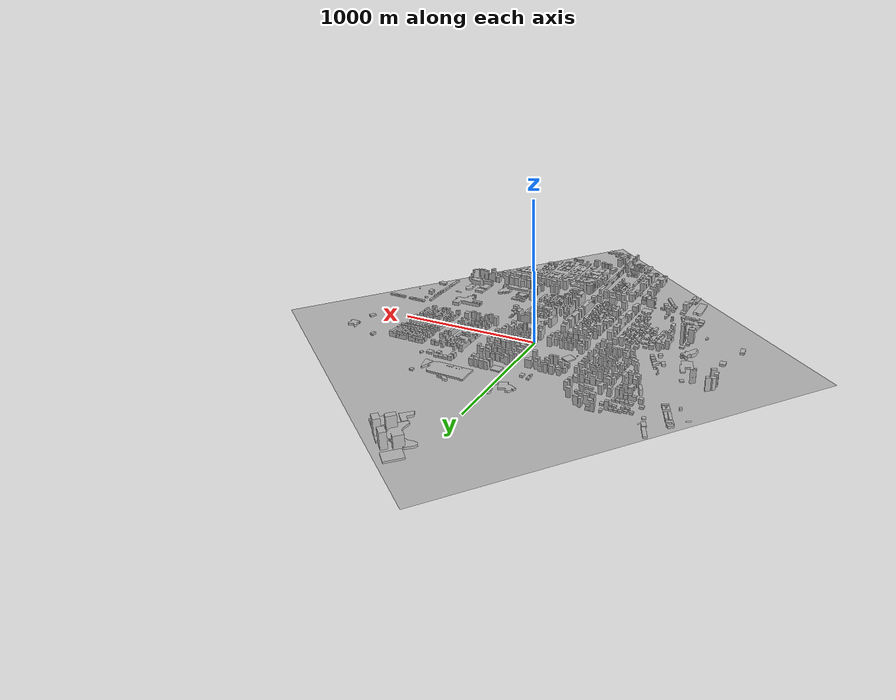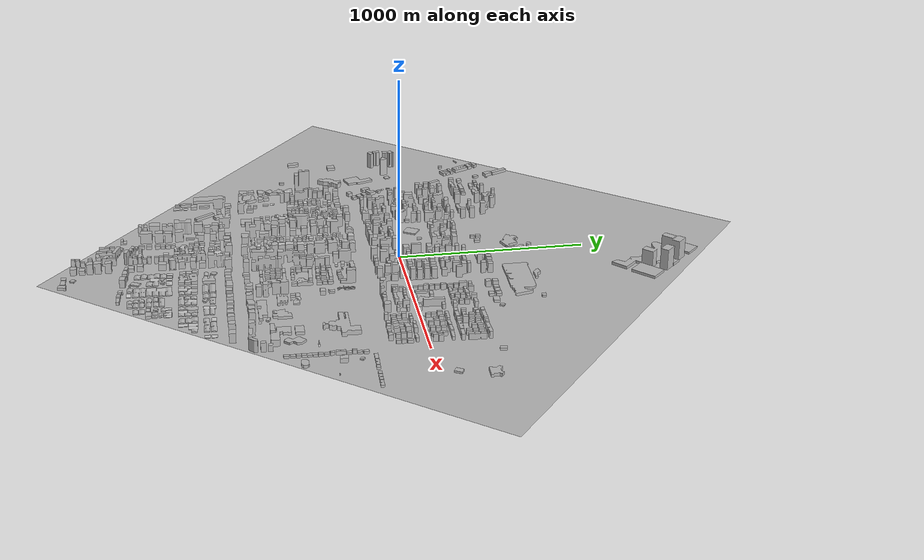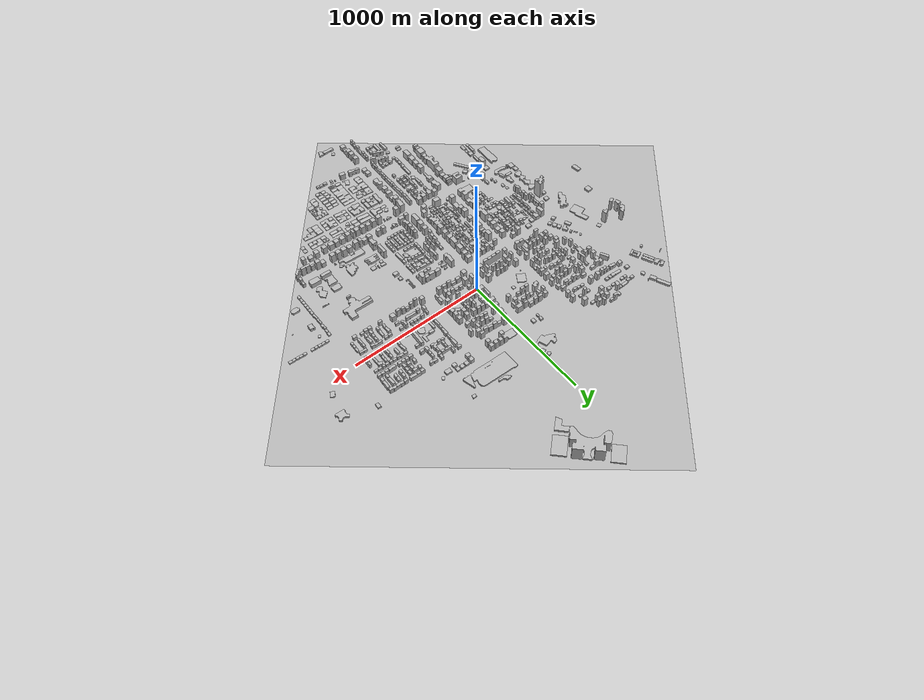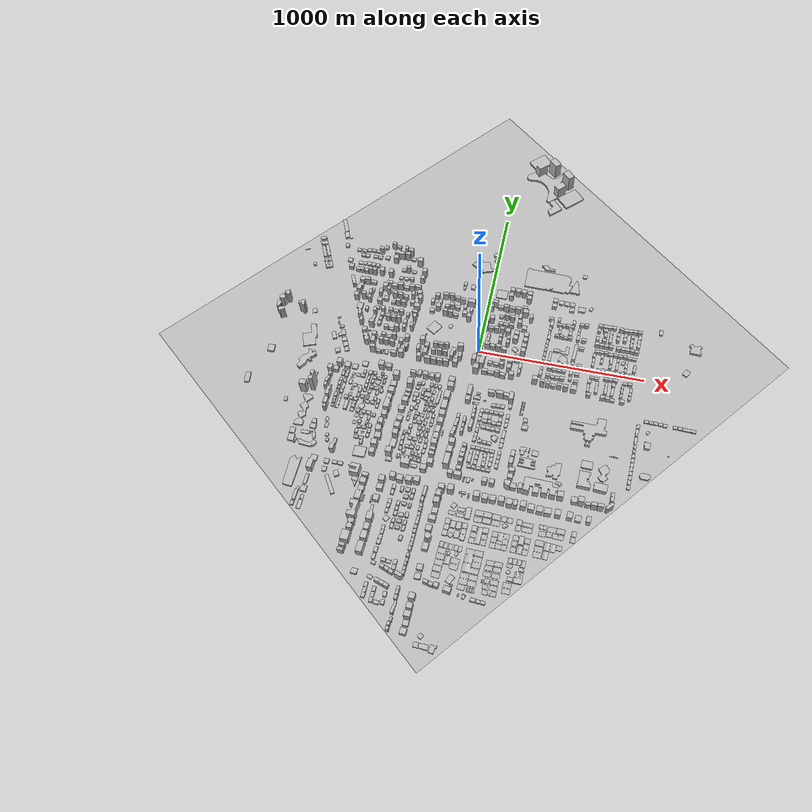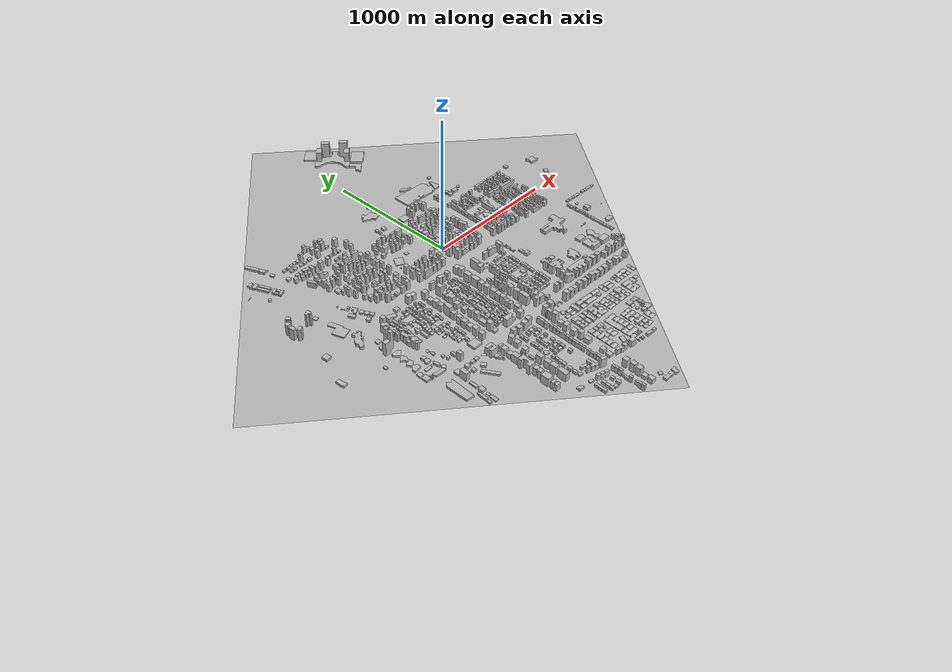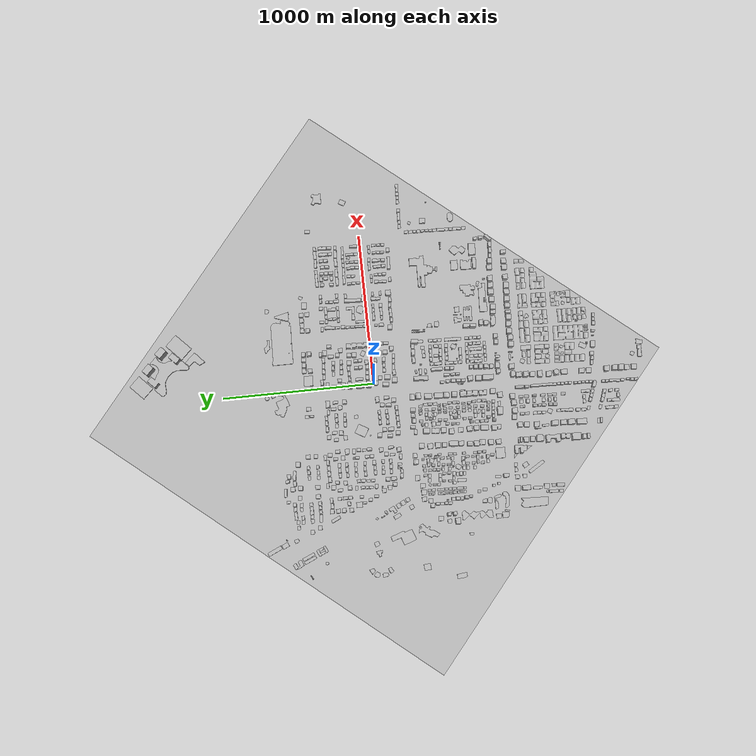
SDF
<sdf version='1.7'>
  <world name='default'>
    <light name='sun' type='directional'>
      <cast_shadows>1</cast_shadows>
      <pose>0 0 10 0 -0 0</pose>
      <diffuse>0.8 0.8 0.8 1</diffuse>
      <specular>0.2 0.2 0.2 1</specular>
      <attenuation>
        <range>1000</range>
        <constant>0.9</constant>
        <linear>0.01</linear>
        <quadratic>0.001</quadratic>
      </attenuation>
      <direction>-0.5 0.1 -0.9</direction>
      <spot>
        <inner_angle>0</inner_angle>
        <outer_angle>0</outer_angle>
        <falloff>0</falloff>
      </spot>
    </light>
    <gravity>0 0 -9.8</gravity>
    <magnetic_field>6e-06 2.3e-05 -4.2e-05</magnetic_field>
    <atmosphere type='adiabatic'/>
    <physics type='ode'>
      <max_step_size>0.001</max_step_size>
      <real_time_factor>1</real_time_factor>
      <real_time_update_rate>1000</real_time_update_rate>
    </physics>
    <scene>
      <ambient>0.9 0.9 0.9 1</ambient>
      <background>0.7 0.7 0.7 1</background>
      <shadows>1</shadows>
    <sky>
    <clouds>
      <speed>12</speed>
    </clouds>
    </sky>
    <fog>
      <type>linear</type>
      <start>10</start>
      <end>500</end>
      <density>1</density>
    </fog>
    </scene>
    <model name='abu_dhabi'>
      <pose>-50 -1.5 0 0 0 0.88</pose>
      <static>1</static>
      <link name='terrain'>
        <visual name='visual'>
          <geometry>
            <mesh>
              <uri>model://abu_dhabi/media/terrain.dae</uri>
            </mesh>
          </geometry>
        </visual>
        <collision name='collision'>
          <geometry>
            <mesh>
              <uri>model://abu_dhabi/media/terrain.dae</uri>
            </mesh>
          </geometry>
        </collision>
      </link>
      <link name='buildings'>
        <visual name='visual'>
          <geometry>
            <mesh>
              <uri>model://abu_dhabi/media/buildings.dae</uri>
            </mesh>
          </geometry>
        </visual>
      </link>
    </model>

  <include>
    <uri>model://virtual_cam</uri>
  </include>

    <gui fullscreen='0'>
      <camera name='user_camera'>
        <pose>-10 10 10 0 0 0</pose>
        <view_controller>orbit</view_controller>
        <projection_type>perspective</projection_type>
        <track_visual>
          <name>virtual_cam</name>
          <follow>true</follow>
          <xyz>-10 10 10 </xyz>
          <static>true</static>
          <min_dist>1.0</min_dist>
          <max_dist>100.0</max_dist>
        </track_visual>
      </camera>
    </gui>
  </world>
</sdf>
<!-- vim: set et ft=xml fenc=utf-8 ff=unix sts=0 sw=2 ts=2 : -->

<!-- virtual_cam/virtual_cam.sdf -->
<sdf version="1.6">
  <model name="virtual_cam">
    <pose>0 0 0 0 0 0</pose>
    <static>true</static>
    <link name="link">
      <visual name="visual">
        <geometry>
          <box>
            <size>0.01 0.01 0.01</size>
          </box>
        </geometry>
      </visual>
      <sensor name="camera" type="camera">
        <camera name="__default__">
          <horizontal_fov>1.047</horizontal_fov>
          <image>
            <width>320</width>
            <height>240</height>
          </image>
          <clip>
            <near>0.1</near>
            <far>100</far>
          </clip>
          <lens>
            <type>custom</type>
            <custom_function>
              <c1>1.05</c1>
              <c2>4</c2>
              <f>1</f>
              <fun>tan</fun>
            </custom_function>
            <scale_to_hfov>1</scale_to_hfov>
            <cutoff_angle>3.1415</cutoff_angle>
            <env_texture_size>1080</env_texture_size>
          </lens>
        </camera>
        <always_on>1</always_on>
        <update_rate>30</update_rate>
        <visualize>1</visualize>
        <plugin name="camera_plugin" filename="libgazebo_ros_camera.so">
          <robotNamespace/>
          <alwaysOn>true</alwaysOn>
          <imageTopicName>image_raw</imageTopicName>
          <cameraInfoTopicName>camera_info</cameraInfoTopicName>
          <updateRate>30.0</updateRate>
          <cameraName>usb_cam</cameraName>
          <frameName>/robot_camera_link</frameName>
          <CxPrime>320.5</CxPrime>
          <Cx>320.5</Cx>
          <Cy>240.5</Cy>
          <hackBaseline>0</hackBaseline>
          <focalLength>277.191356</focalLength>
          <distortionK1>0.0</distortionK1>
          <distortionK2>0.0</distortionK2>
          <distortionK3>0.0</distortionK3>
          <distortionT1>0.0</distortionT1>
          <distortionT2>0.0</distortionT2>
        </plugin>
        <!-- GStreamer camera plugin (needs a lot of CPU! Consider lowering the
             camera image size) -->
        <plugin name="GstCameraPlugin" filename="libgazebo_gst_camera_plugin.so">
          <robotNamespace/>
          <udpPort>5600</udpPort>
        </plugin>
      </sensor>
      <self_collide>0</self_collide>
      <kinematic>1</kinematic>
    </link>
	<plugin name="virtual_cam" filename="libgazebo_model_pose.so">
		<topic>/qualisys/cf1/pose</topic>
	</plugin>
  </model>
</sdf>
